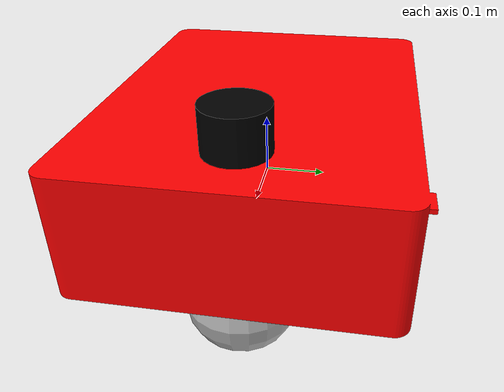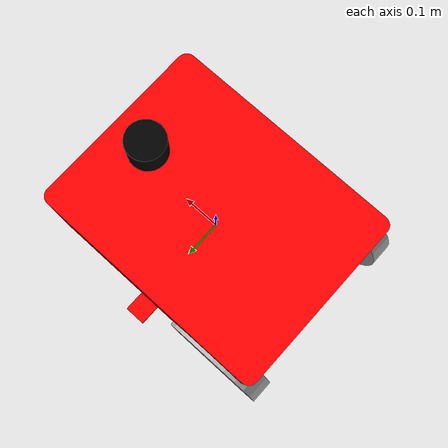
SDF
<?xml version="1.0" ?>
<sdf version="1.5">
  <model name="basic_mobile_bot">
  <static>false</static>

  <!-- ****************** ROBOT BASE FOOTPRINT ***************************  -->
  <pose>0.0 0.0 0.0 0.0 0.0 0.0</pose>
  <link name="base_footprint"/>

  <!-- ********************** ROBOT BASE *********************************  -->
  <link name="base_link">

    <collision name="base_collision">
      <pose>0 0 0.1 0 0 0</pose>
      <geometry>
        <box>
          <size>0.70 0.39 0.20</size>
        </box>
      </geometry>
    </collision>

    <visual name="base_visual">
      <pose>0 0 -0.05 0 0 0 0</pose>
      <geometry>
        <mesh>
          <uri>model://sdf_robot_description/meshes/chassi.stl</uri>
          <scale>0.001 0.001 0.001 </scale>
        </mesh>
      </geometry>
      <material>
        <ambient>1.0 0.0 0.0 1.0</ambient>
        <diffuse>1.0 0.0 0.0 1.0</diffuse>
        <specular>0.0 0.0 0.0 1.0</specular>
        <emissive>0.0 0.0 0.0 1.0</emissive>
      </material>
    </visual>
  </link>

  <!-- *********************** DRIVE WHEELS ******************************  -->
  <link name="drivewhl_l_link">
    <pose>-0.221 0.23 -0.05 0 1.570796 1.570796</pose>

    <collision name="drivewhl_l_collision">
      <geometry>
        <cylinder>
          <radius>0.14</radius>
          <length>0.06</length>
        </cylinder>
      </geometry>
    </collision>

    <visual name="drivewhl_l_visual">
      <geometry>
        <cylinder>
          <radius>0.14</radius>
          <length>0.06</length>
        </cylinder>
      </geometry>
    </visual>
  </link>

  <link name="drivewhl_r_link">
    <pose>-0.221 -0.23 -0.05 0 1.570796 1.570796</pose>

    <collision name="drivewhl_r_collision">
      <geometry>
        <cylinder>
          <radius>0.14</radius>
          <length>0.06</length>
        </cylinder>
      </geometry>
    </collision>

    <visual name="drivewhl_r_visual">
      <geometry>
        <cylinder>
          <radius>0.14</radius>
          <length>0.06</length>
        </cylinder>
      </geometry>
    </visual>
  </link>

  <!-- *********************** CASTER WHEEL ******************************  -->
  <link name='front_caster'>
    <pose>0.217 0 -0.1 0 0 0</pose>
    <collision name='collision'>
      <geometry>
        <sphere>
          <radius>0.09</radius>
        </sphere>
      </geometry>
      <surface>
        <friction>
          <ode>
            <mu>0.01</mu>
            <mu2>0.01</mu2>
            <slip1>1.0</slip1>
            <slip2>1.0</slip2>
          </ode>
        </friction>
      </surface>
    </collision>
    <visual name="front_caster_visual">
      <geometry>
        <sphere>
          <radius>0.09</radius>
        </sphere>
      </geometry>
    </visual>
  </link>

  <!-- ************************ JOINTS ***********************************  -->
  <!-- Pose of the joint is the same as the child link frame -->
  <!-- Axis is the axis of rotation relative to the child link frame -->

  <joint name="base_joint" type="fixed">
    <parent>base_footprint</parent>
    <child>base_link</child>
    <pose>0 0 0 0 0 0</pose>
  </joint>

  <joint name="drivewhl_l_joint" type="revolute">
    <parent>base_link</parent>
    <child>drivewhl_l_link</child>
    <pose>0 0 0 0 0 0</pose>
    <axis>
      <xyz>0 0 1</xyz>
    </axis>
  </joint>

  <joint name="drivewhl_r_joint" type="revolute">
    <parent>base_link</parent>
    <child>drivewhl_r_link</child>
    <pose>0 0 0 0 0 0</pose>
    <axis>
      <xyz>0 0 1</xyz>
    </axis>
  </joint>

  <joint name='caster_joint' type='fixed'>
    <parent>base_link</parent>
    <child>front_caster</child>
    <pose>0 0 0 0 0 0</pose>
  </joint>

  <joint name="lidar_joint" type="fixed">
    <parent>base_link</parent>
    <child>lidar_link</child>
    <pose>0 0 0 0 0 0</pose>
  </joint>

 <!-- *********************** WHEEL ODOMETRY ***************************    -->
  <plugin name="basic_mobile_bot_diff_drive" filename="libgazebo_ros_diff_drive.so">

    <update_rate>30</update_rate>

    <!-- wheels -->
    <left_joint>drivewhl_l_joint</left_joint>
    <right_joint>drivewhl_r_joint</right_joint>

    <!-- kinematics -->
    <wheel_separation>0.52</wheel_separation>
    <wheel_diameter>0.28</wheel_diameter>

    <!-- limits -->
    <max_wheel_torque>20</max_wheel_torque>
    <max_wheel_acceleration>1.0</max_wheel_acceleration>

    <!-- Receive velocity commands on this ROS topic -->
    <command_topic>cmd_vel</command_topic>

    <!-- output -->
    <!-- When false, publish no wheel odometry data to a ROS topic -->
    <publish_odom>true</publish_odom>

    <!-- When true, publish coordinate transform from odom to base_footprint -->
    <!-- I usually use the robot_localization package to publish this transform -->
    <publish_odom_tf>false</publish_odom_tf>

    <!-- When true, publish coordinate transform from base_link to the wheels -->
    <!-- The robot_state_publisher package is often used to publish this transform -->
    <publish_wheel_tf>false</publish_wheel_tf>

    <odometry_topic>odom</odometry_topic>
    <odometry_frame>odom</odometry_frame>
    <robot_base_frame>base_footprint</robot_base_frame>

    <!-- Odometry source, 0 for ENCODER, 1 for WORLD, defaults to WORLD -->
    <odometry_source>0</odometry_source>

    <!-- Change the ROS topic we will publish the odometry data to -->
  </plugin>

 <!-- *********************** JOINT STATE PUBLISHER *********************   -->

  <plugin name="basic_mobile_bot_joint_state" filename="libgazebo_ros_joint_state_publisher.so">
    <ros>
      <remapping>~/out:=joint_states</remapping>
    </ros>
    <update_rate>30</update_rate>
    <joint_name>drivewhl_l_joint</joint_name>
    <joint_name>drivewhl_r_joint</joint_name>
  </plugin>

  <!-- ****************************** LIDAR *****************************    -->
  <link name="lidar_link">
  <inertial>
    <pose>0.215 0 0.13 0 0 0</pose>
    <inertia>
      <ixx>0.001</ixx>
      <ixy>0.000</ixy>
      <ixz>0.000</ixz>
      <iyy>0.001</iyy>
      <iyz>0.000</iyz>
      <izz>0.001</izz>
    </inertia>
    <mass>0.114</mass>
  </inertial>

  <collision name="lidar_collision">
    <pose>0.215 0 0.13 0 0 0</pose>
    <geometry>
      <cylinder>
        <radius>0.0508</radius>
        <length>0.18</length>
      </cylinder>
    </geometry>
  </collision>

  <visual name="lidar_visual">
    <pose>0.215 0 0.13 0 0 0</pose>
    <geometry>
      <cylinder>
        <radius>0.0508</radius>
        <length>0.18</length>
      </cylinder>
    </geometry>
    <material>
      <ambient>0.0 0.0 0.0 1.0</ambient>
      <diffuse>0.0 0.0 0.0 1.0</diffuse>
      <specular>0.0 0.0 0.0 1.0</specular>
      <emissive>0.0 0.0 0.0 1.0</emissive>
    </material>
  </visual>

  <sensor name="lidar" type="ray">
      <pose>0.215 0 0.215 0 0 0</pose>
      <always_on>true</always_on>
      <visualize>true</visualize>
      <update_rate>5</update_rate>
      <ray>
        <scan>
          <horizontal>
            <samples>360</samples>
            <resolution>1.00000</resolution>
            <min_angle>0.000000</min_angle>
            <max_angle>6.280000</max_angle>
          </horizontal>
        </scan>
        <range>
          <min>0.120000</min>
          <max>3.5</max>
          <resolution>0.015000</resolution>
        </range>
        <noise>
          <type>gaussian</type>
          <mean>0.0</mean>
          <stddev>0.01</stddev>
        </noise>
      </ray>
   </sensor>
</link>

  </model>
</sdf>
